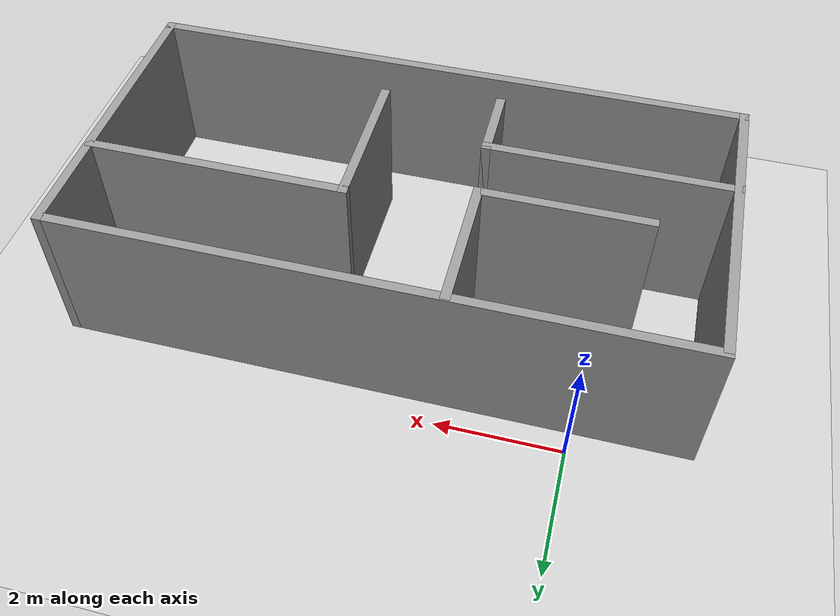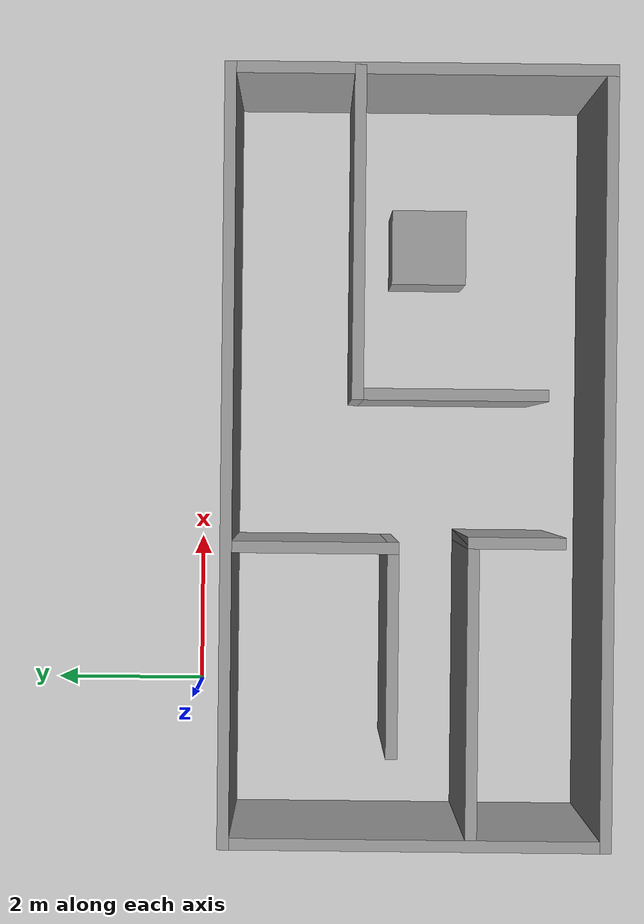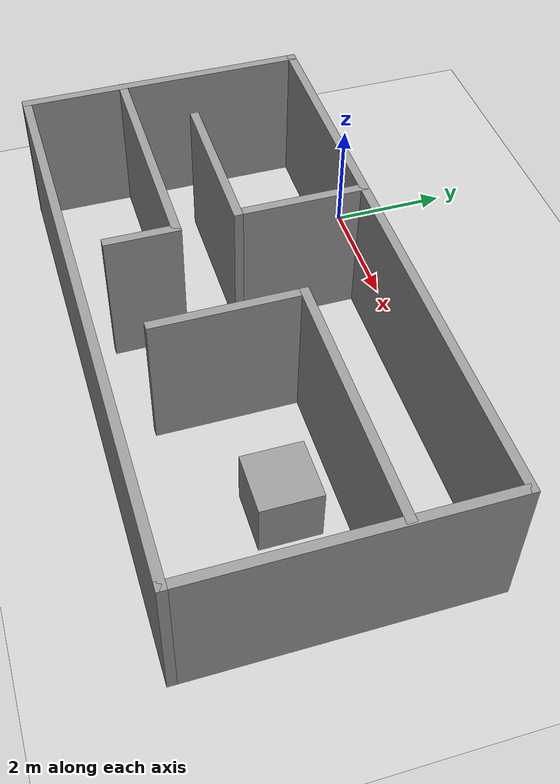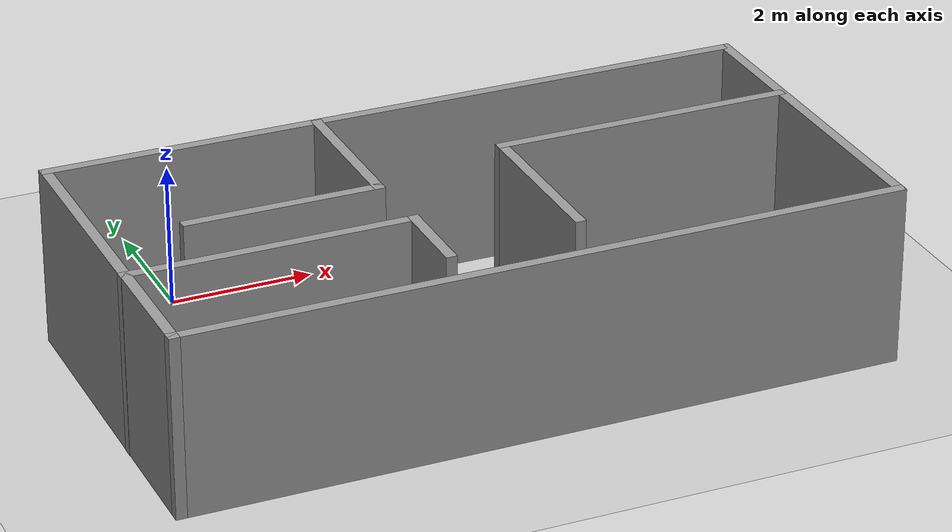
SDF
<sdf version="1.7">
 <world name="default">
  <light name="sun" type="directional">
   <pose>0 0 10 0 -0 0</pose>
   <diffuse>0.8 0.8 0.8 1</diffuse>
   <specular>0.2 0.2 0.2 1</specular>
   <attenuation>
    <range>1000</range>
    <constant>0.9</constant>
    <linear>0.01</linear>
    <quadratic>0.001</quadratic>
   </attenuation>
   <direction>-0.5 0.1 -0.9</direction>
   <spot><inner_angle>0</inner_angle><outer_angle>0</outer_angle><falloff>0</falloff></spot>
  </light>
  <model name="ground_plane">
   <static>1</static>
   <link name="link">
    <collision name="collision">
     <geometry><plane><normal>0 0 1</normal><size>100 100</size></plane></geometry>
     <surface><friction><ode><mu>100</mu><mu2>50</mu2></ode></friction></surface>
    </collision>
    <visual name="visual">
     <cast_shadows>0</cast_shadows>
     <geometry><plane><normal>0 0 1</normal><size>100 100</size></plane></geometry>
     <material>
      <script><uri>file://media/materials/scripts/gazebo.material</uri><name>Gazebo/Grey</name></script>
     </material>
    </visual>
   </link>
  </model>
  <gravity>0 0 -9.8</gravity>
  <magnetic_field>6e-06 2.3e-05 -4.2e-05</magnetic_field>
  <atmosphere type="adiabatic"/>
  <physics type="ode">
   <max_step_size>0.001</max_step_size>
   <real_time_factor>1</real_time_factor>
   <real_time_update_rate>1000</real_time_update_rate>
  </physics>
  <scene><ambient>0.4 0.4 0.4 1</ambient><background>0.7 0.7 0.7 1</background><shadows>1</shadows></scene>
  <audio><device>default</device></audio>
  <spherical_coordinates>
   <surface_model>EARTH_WGS84</surface_model>
   <latitude_deg>0</latitude_deg>
   <longitude_deg>0</longitude_deg>
   <elevation>0</elevation>
   <heading_deg>0</heading_deg>
  </spherical_coordinates>
  <model name="room">
   <pose>3.13366 -2.23186 0 0 -0 0</pose>
   <link name="Wall_1">
    <collision name="Wall_1_Collision">
     <geometry><box><size>10 0.15 2.5</size></box></geometry>
     <pose>0 0 1.25 0 -0 0</pose>
    </collision>
    <visual name="Wall_1_Visual">
     <pose>0 0 1.25 0 -0 0</pose>
     <geometry><box><size>10 0.15 2.5</size></box></geometry>
     <material>
      <script><uri>file://media/materials/scripts/gazebo.material</uri><name>Gazebo/Grey</name></script>
      <ambient>1 1 1 1</ambient>
     </material>
     <meta><layer>0</layer></meta>
    </visual>
    <pose>0.002273 1.8025 0 0 -0 0</pose>
   </link>
   <link name="Wall_10">
    <collision name="Wall_10_Collision">
     <geometry><box><size>1.25 0.15 2.5</size></box></geometry>
     <pose>0 0 1.25 0 -0 0</pose>
    </collision>
    <visual name="Wall_10_Visual">
     <pose>0 0 1.25 0 -0 0</pose>
     <geometry><box><size>1.25 0.15 2.5</size></box></geometry>
     <material>
      <script><uri>file://media/materials/scripts/gazebo.material</uri><name>Gazebo/Grey</name></script>
      <ambient>1 1 1 1</ambient>
     </material>
     <meta><layer>0</layer></meta>
    </visual>
    <pose>-1.07727 -1.88827 0 0 -0 -1.5708</pose>
   </link>
   <link name="Wall_12">
    <collision name="Wall_12_Collision">
     <geometry><box><size>4.25 0.15 2.5</size></box></geometry>
     <pose>0 0 1.25 0 -0 0</pose>
    </collision>
    <visual name="Wall_12_Visual">
     <pose>0 0 1.25 0 -0 0</pose>
     <geometry><box><size>4.25 0.15 2.5</size></box></geometry>
     <material>
      <script><uri>file://media/materials/scripts/gazebo.material</uri><name>Gazebo/Grey</name></script>
      <ambient>1 1 1 1</ambient>
     </material>
     <meta><layer>0</layer></meta>
    </visual>
    <pose>2.84758 0.15219 0 0 -0 3.14159</pose>
   </link>
   <link name="Wall_13">
    <collision name="Wall_13_Collision">
     <geometry><box><size>2.5 0.15 2.5</size></box></geometry>
     <pose>0 0 1.25 0 -0 0</pose>
    </collision>
    <visual name="Wall_13_Visual">
     <pose>0 0 1.25 0 -0 0</pose>
     <geometry><box><size>2.5 0.15 2.5</size></box></geometry>
     <material>
      <script><uri>file://media/materials/scripts/gazebo.material</uri><name>Gazebo/Grey</name></script>
      <ambient>1 1 1 1</ambient>
     </material>
     <meta><layer>0</layer></meta>
    </visual>
    <pose>0.79758 -1.02281 0 0 -0 -1.5708</pose>
   </link>
   <link name="Wall_2">
    <collision name="Wall_2_Collision">
     <geometry><box><size>5 0.15 2.5</size></box></geometry>
     <pose>0 0 1.25 0 -0 0</pose>
    </collision>
    <visual name="Wall_2_Visual">
     <pose>0 0 1.25 0 -0 0</pose>
     <geometry><box><size>5 0.15 2.5</size></box></geometry>
     <material>
      <script><uri>file://media/materials/scripts/gazebo.material</uri><name>Gazebo/Grey</name></script>
      <ambient>1 1 1 1</ambient>
     </material>
     <meta><layer>0</layer></meta>
    </visual>
    <pose>4.92727 -0.6225 0 0 -0 -1.5708</pose>
   </link>
   <link name="Wall_3">
    <collision name="Wall_3_Collision">
     <geometry><box><size>10 0.15 2.5</size></box></geometry>
     <pose>0 0 1.25 0 -0 0</pose>
    </collision>
    <visual name="Wall_3_Visual">
     <pose>0 0 1.25 0 -0 0</pose>
     <geometry><box><size>10 0.15 2.5</size></box></geometry>
     <material>
      <script><uri>file://media/materials/scripts/gazebo.material</uri><name>Gazebo/Grey</name></script>
      <ambient>1 1 1 1</ambient>
     </material>
     <meta><layer>0</layer></meta>
    </visual>
    <pose>0.002273 -3.0475 0 0 -0 3.14159</pose>
   </link>
   <link name="Wall_4">
    <collision name="Wall_4_Collision">
     <geometry><box><size>5 0.15 2.5</size></box></geometry>
     <pose>0 0 1.25 0 -0 0</pose>
    </collision>
    <visual name="Wall_4_Visual">
     <pose>0 0 1.25 0 -0 0</pose>
     <geometry><box><size>5 0.15 2.5</size></box></geometry>
     <material>
      <script><uri>file://media/materials/scripts/gazebo.material</uri><name>Gazebo/Grey</name></script>
      <ambient>1 1 1 1</ambient>
     </material>
     <meta><layer>0</layer></meta>
    </visual>
    <pose>-4.92273 -0.6225 0 0 -0 1.5708</pose>
   </link>
   <link name="Wall_6">
    <collision name="Wall_6_Collision">
     <geometry><box><size>2.25 0.15 2.5</size></box></geometry>
     <pose>0 0 1.25 0 -0 0</pose>
    </collision>
    <visual name="Wall_6_Visual">
     <pose>0 0 1.25 0 -0 0</pose>
     <geometry><box><size>2.25 0.15 2.5</size></box></geometry>
     <material>
      <script><uri>file://media/materials/scripts/gazebo.material</uri><name>Gazebo/Grey</name></script>
      <ambient>1 1 1 1</ambient>
     </material>
     <meta><layer>0</layer></meta>
    </visual>
    <pose>-1.1555 0.729526 0 0 -0 -1.5708</pose>
   </link>
   <link name="Wall_7">
    <collision name="Wall_7_Collision">
     <geometry><box><size>2.75 0.15 2.5</size></box></geometry>
     <pose>0 0 1.25 0 -0 0</pose>
    </collision>
    <visual name="Wall_7_Visual">
     <pose>0 0 1.25 0 -0 0</pose>
     <geometry><box><size>2.75 0.15 2.5</size></box></geometry>
     <material>
      <script><uri>file://media/materials/scripts/gazebo.material</uri><name>Gazebo/Grey</name></script>
      <ambient>1 1 1 1</ambient>
     </material>
     <meta><layer>0</layer></meta>
    </visual>
    <pose>-2.4555 -0.320474 0 0 -0 3.14159</pose>
   </link>
   <link name="Wall_9">
    <collision name="Wall_9_Collision">
     <geometry><box><size>4 0.15 2.5</size></box></geometry>
     <pose>0 0 1.25 0 -0 0</pose>
    </collision>
    <visual name="Wall_9_Visual">
     <pose>0 0 1.25 0 -0 0</pose>
     <geometry><box><size>4 0.15 2.5</size></box></geometry>
     <material>
      <script><uri>file://media/materials/scripts/gazebo.material</uri><name>Gazebo/Grey</name></script>
      <ambient>1 1 1 1</ambient>
     </material>
     <meta><layer>0</layer></meta>
    </visual>
    <pose>-3.00227 -1.33827 0 0 -0 0</pose>
   </link>
   <static>1</static>
  </model>
  <model name="unit_box">
   <pose>5.97258 -3.06485 0.5 0 -0 0</pose>
   <link name="link">
    <inertial>
     <mass>1</mass>
     <inertia>
      <ixx>0.166667</ixx>
      <ixy>0</ixy>
      <ixz>0</ixz>
      <iyy>0.166667</iyy>
      <iyz>0</iyz>
      <izz>0.166667</izz>
     </inertia>
    </inertial>
    <collision name="collision"><geometry><box><size>1 1 1</size></box></geometry></collision>
    <visual name="visual">
     <geometry><box><size>1 1 1</size></box></geometry>
     <material>
      <script><name>Gazebo/Grey</name><uri>file://media/materials/scripts/gazebo.material</uri></script>
     </material>
    </visual>
   </link>
  </model>
 </world>
</sdf>
